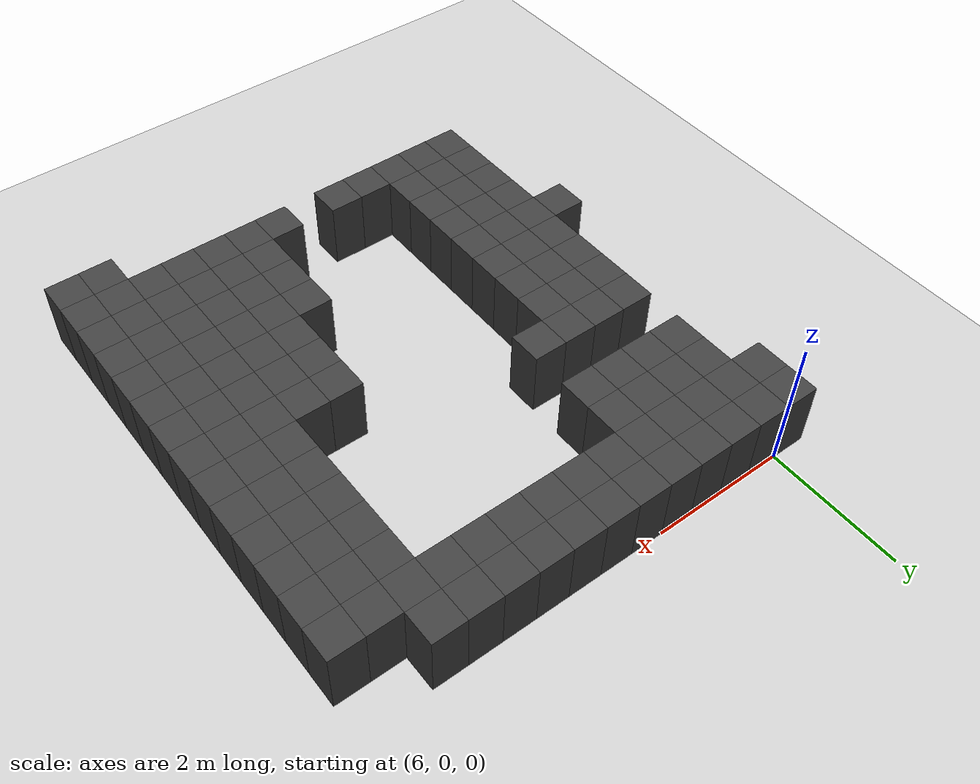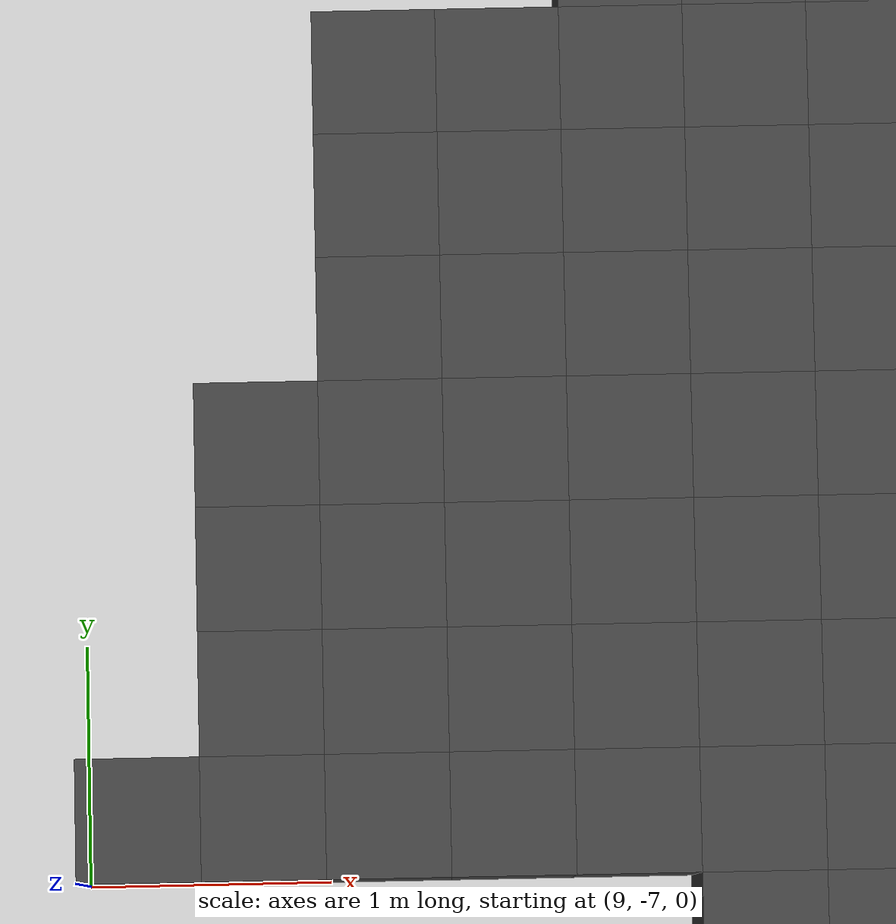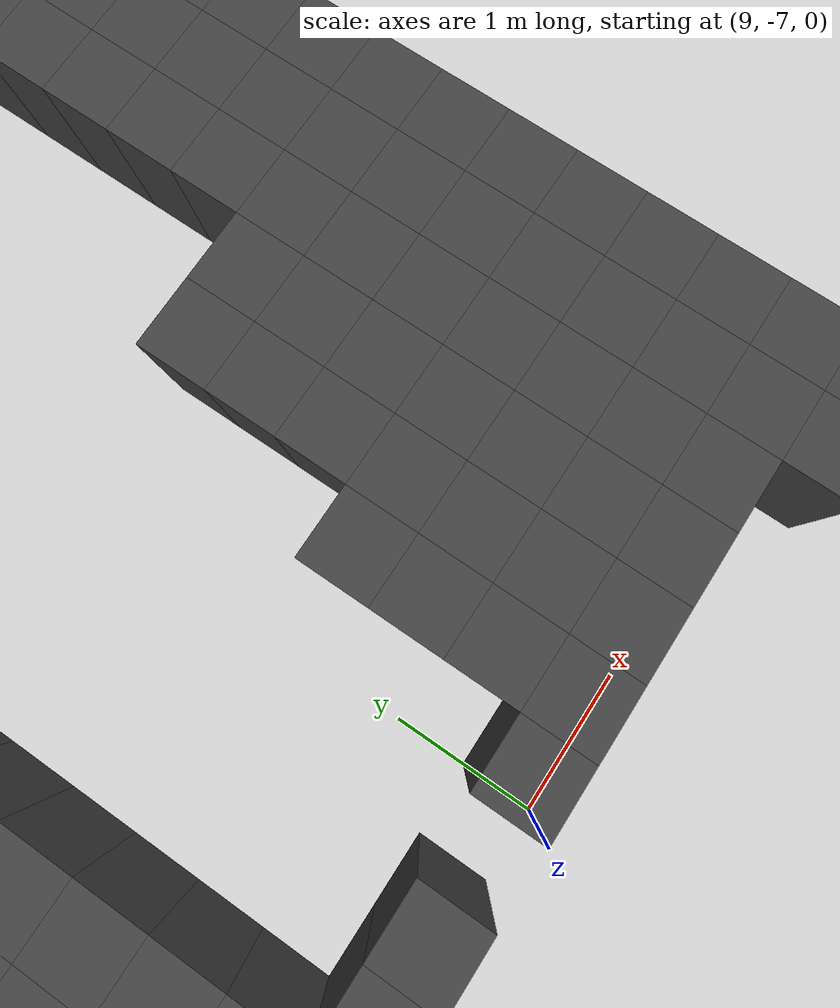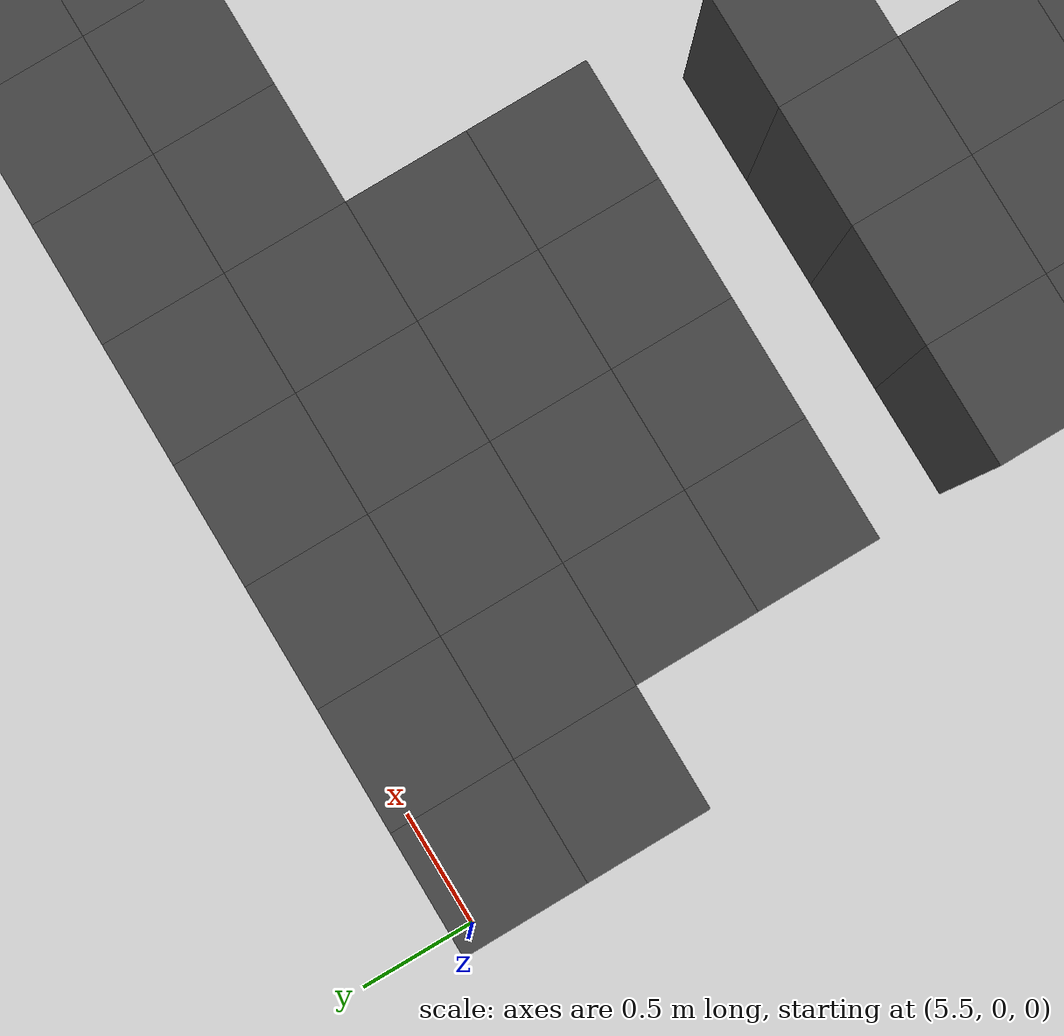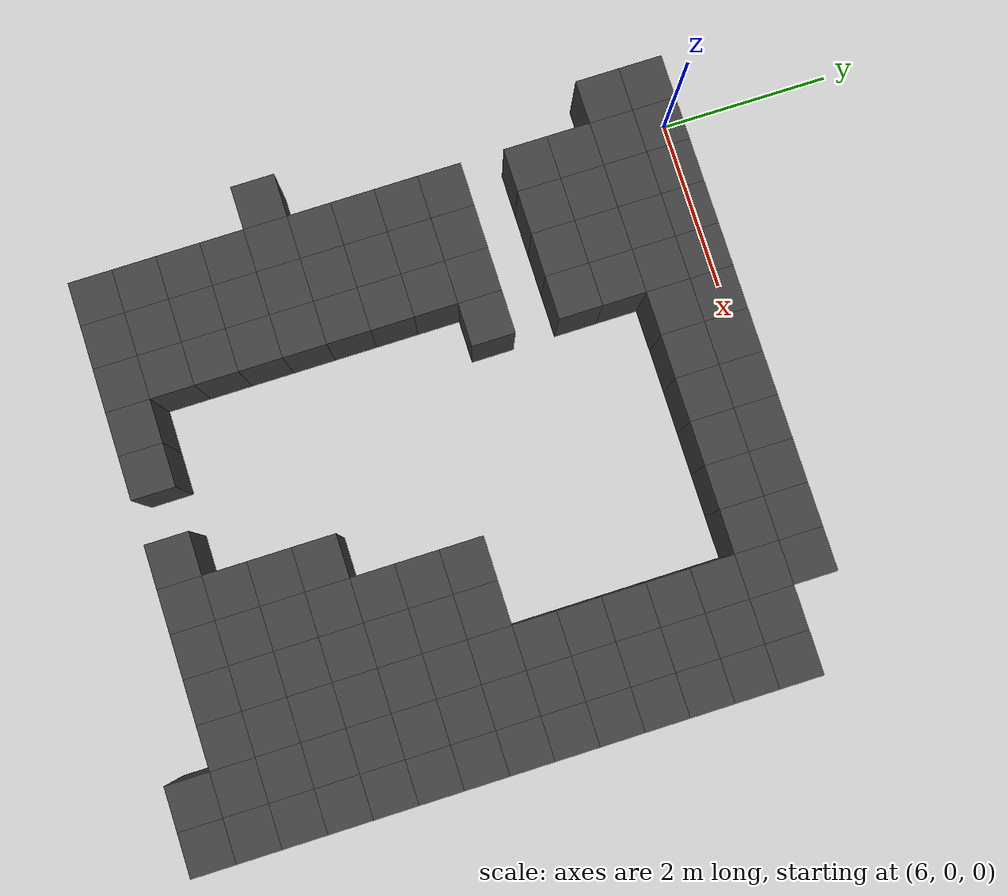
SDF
<sdf version="1.7">
 <world name="map_14547">
  <model name="ground_plane">
   <static>true</static>
   <link name="link">
    <collision name="collision">
     <geometry><plane><normal>0 0 1</normal><size>200 200</size></plane></geometry>
    </collision>
    <visual name="visual">
     <geometry><plane><normal>0 0 1</normal><size>200 200</size></plane></geometry>
     <material><ambient>0.8 0.8 0.8 1</ambient><diffuse>0.8 0.8 0.8 1</diffuse></material>
    </visual>
   </link>
  </model>
  <model name="maze_environment">
   <static>true</static>
   <link name="wall_911">
    <pose>5.750 -0.250 0.500 0 0 0</pose>
    <collision name="col"><geometry><box><size>0.5 0.5 1.0</size></box></geometry></collision>
    <visual name="vis">
     <geometry><box><size>0.5 0.5 1.0</size></box></geometry>
     <material><ambient>0.15 0.15 0.15 1</ambient><diffuse>0.25 0.25 0.25 1</diffuse></material>
    </visual>
   </link>
   <link name="wall_912">
    <pose>6.250 -0.250 0.500 0 0 0</pose>
    <collision name="col"><geometry><box><size>0.5 0.5 1.0</size></box></geometry></collision>
    <visual name="vis">
     <geometry><box><size>0.5 0.5 1.0</size></box></geometry>
     <material><ambient>0.15 0.15 0.15 1</ambient><diffuse>0.25 0.25 0.25 1</diffuse></material>
    </visual>
   </link>
   <link name="wall_913">
    <pose>6.750 -0.250 0.500 0 0 0</pose>
    <collision name="col"><geometry><box><size>0.5 0.5 1.0</size></box></geometry></collision>
    <visual name="vis">
     <geometry><box><size>0.5 0.5 1.0</size></box></geometry>
     <material><ambient>0.15 0.15 0.15 1</ambient><diffuse>0.25 0.25 0.25 1</diffuse></material>
    </visual>
   </link>
   <link name="wall_914">
    <pose>7.250 -0.250 0.500 0 0 0</pose>
    <collision name="col"><geometry><box><size>0.5 0.5 1.0</size></box></geometry></collision>
    <visual name="vis">
     <geometry><box><size>0.5 0.5 1.0</size></box></geometry>
     <material><ambient>0.15 0.15 0.15 1</ambient><diffuse>0.25 0.25 0.25 1</diffuse></material>
    </visual>
   </link>
   <link name="wall_915">
    <pose>7.750 -0.250 0.500 0 0 0</pose>
    <collision name="col"><geometry><box><size>0.5 0.5 1.0</size></box></geometry></collision>
    <visual name="vis">
     <geometry><box><size>0.5 0.5 1.0</size></box></geometry>
     <material><ambient>0.15 0.15 0.15 1</ambient><diffuse>0.25 0.25 0.25 1</diffuse></material>
    </visual>
   </link>
   <link name="wall_916">
    <pose>8.250 -0.250 0.500 0 0 0</pose>
    <collision name="col"><geometry><box><size>0.5 0.5 1.0</size></box></geometry></collision>
    <visual name="vis">
     <geometry><box><size>0.5 0.5 1.0</size></box></geometry>
     <material><ambient>0.15 0.15 0.15 1</ambient><diffuse>0.25 0.25 0.25 1</diffuse></material>
    </visual>
   </link>
   <link name="wall_917">
    <pose>8.750 -0.250 0.500 0 0 0</pose>
    <collision name="col"><geometry><box><size>0.5 0.5 1.0</size></box></geometry></collision>
    <visual name="vis">
     <geometry><box><size>0.5 0.5 1.0</size></box></geometry>
     <material><ambient>0.15 0.15 0.15 1</ambient><diffuse>0.25 0.25 0.25 1</diffuse></material>
    </visual>
   </link>
   <link name="wall_918">
    <pose>9.250 -0.250 0.500 0 0 0</pose>
    <collision name="col"><geometry><box><size>0.5 0.5 1.0</size></box></geometry></collision>
    <visual name="vis">
     <geometry><box><size>0.5 0.5 1.0</size></box></geometry>
     <material><ambient>0.15 0.15 0.15 1</ambient><diffuse>0.25 0.25 0.25 1</diffuse></material>
    </visual>
   </link>
   <link name="wall_919">
    <pose>9.750 -0.250 0.500 0 0 0</pose>
    <collision name="col"><geometry><box><size>0.5 0.5 1.0</size></box></geometry></collision>
    <visual name="vis">
     <geometry><box><size>0.5 0.5 1.0</size></box></geometry>
     <material><ambient>0.15 0.15 0.15 1</ambient><diffuse>0.25 0.25 0.25 1</diffuse></material>
    </visual>
   </link>
   <link name="wall_920">
    <pose>10.250 -0.250 0.500 0 0 0</pose>
    <collision name="col"><geometry><box><size>0.5 0.5 1.0</size></box></geometry></collision>
    <visual name="vis">
     <geometry><box><size>0.5 0.5 1.0</size></box></geometry>
     <material><ambient>0.15 0.15 0.15 1</ambient><diffuse>0.25 0.25 0.25 1</diffuse></material>
    </visual>
   </link>
   <link name="wall_921">
    <pose>10.750 -0.250 0.500 0 0 0</pose>
    <collision name="col"><geometry><box><size>0.5 0.5 1.0</size></box></geometry></collision>
    <visual name="vis">
     <geometry><box><size>0.5 0.5 1.0</size></box></geometry>
     <material><ambient>0.15 0.15 0.15 1</ambient><diffuse>0.25 0.25 0.25 1</diffuse></material>
    </visual>
   </link>
   <link name="wall_922">
    <pose>11.250 -0.250 0.500 0 0 0</pose>
    <collision name="col"><geometry><box><size>0.5 0.5 1.0</size></box></geometry></collision>
    <visual name="vis">
     <geometry><box><size>0.5 0.5 1.0</size></box></geometry>
     <material><ambient>0.15 0.15 0.15 1</ambient><diffuse>0.25 0.25 0.25 1</diffuse></material>
    </visual>
   </link>
   <link name="wall_950">
    <pose>5.750 -0.750 0.500 0 0 0</pose>
    <collision name="col"><geometry><box><size>0.5 0.5 1.0</size></box></geometry></collision>
    <visual name="vis">
     <geometry><box><size>0.5 0.5 1.0</size></box></geometry>
     <material><ambient>0.15 0.15 0.15 1</ambient><diffuse>0.25 0.25 0.25 1</diffuse></material>
    </visual>
   </link>
   <link name="wall_951">
    <pose>6.250 -0.750 0.500 0 0 0</pose>
    <collision name="col"><geometry><box><size>0.5 0.5 1.0</size></box></geometry></collision>
    <visual name="vis">
     <geometry><box><size>0.5 0.5 1.0</size></box></geometry>
     <material><ambient>0.15 0.15 0.15 1</ambient><diffuse>0.25 0.25 0.25 1</diffuse></material>
    </visual>
   </link>
   <link name="wall_952">
    <pose>6.750 -0.750 0.500 0 0 0</pose>
    <collision name="col"><geometry><box><size>0.5 0.5 1.0</size></box></geometry></collision>
    <visual name="vis">
     <geometry><box><size>0.5 0.5 1.0</size></box></geometry>
     <material><ambient>0.15 0.15 0.15 1</ambient><diffuse>0.25 0.25 0.25 1</diffuse></material>
    </visual>
   </link>
   <link name="wall_953">
    <pose>7.250 -0.750 0.500 0 0 0</pose>
    <collision name="col"><geometry><box><size>0.5 0.5 1.0</size></box></geometry></collision>
    <visual name="vis">
     <geometry><box><size>0.5 0.5 1.0</size></box></geometry>
     <material><ambient>0.15 0.15 0.15 1</ambient><diffuse>0.25 0.25 0.25 1</diffuse></material>
    </visual>
   </link>
   <link name="wall_954">
    <pose>7.750 -0.750 0.500 0 0 0</pose>
    <collision name="col"><geometry><box><size>0.5 0.5 1.0</size></box></geometry></collision>
    <visual name="vis">
     <geometry><box><size>0.5 0.5 1.0</size></box></geometry>
     <material><ambient>0.15 0.15 0.15 1</ambient><diffuse>0.25 0.25 0.25 1</diffuse></material>
    </visual>
   </link>
   <link name="wall_955">
    <pose>8.250 -0.750 0.500 0 0 0</pose>
    <collision name="col"><geometry><box><size>0.5 0.5 1.0</size></box></geometry></collision>
    <visual name="vis">
     <geometry><box><size>0.5 0.5 1.0</size></box></geometry>
     <material><ambient>0.15 0.15 0.15 1</ambient><diffuse>0.25 0.25 0.25 1</diffuse></material>
    </visual>
   </link>
   <link name="wall_956">
    <pose>8.750 -0.750 0.500 0 0 0</pose>
    <collision name="col"><geometry><box><size>0.5 0.5 1.0</size></box></geometry></collision>
    <visual name="vis">
     <geometry><box><size>0.5 0.5 1.0</size></box></geometry>
     <material><ambient>0.15 0.15 0.15 1</ambient><diffuse>0.25 0.25 0.25 1</diffuse></material>
    </visual>
   </link>
   <link name="wall_957">
    <pose>9.250 -0.750 0.500 0 0 0</pose>
    <collision name="col"><geometry><box><size>0.5 0.5 1.0</size></box></geometry></collision>
    <visual name="vis">
     <geometry><box><size>0.5 0.5 1.0</size></box></geometry>
     <material><ambient>0.15 0.15 0.15 1</ambient><diffuse>0.25 0.25 0.25 1</diffuse></material>
    </visual>
   </link>
   <link name="wall_958">
    <pose>9.750 -0.750 0.500 0 0 0</pose>
    <collision name="col"><geometry><box><size>0.5 0.5 1.0</size></box></geometry></collision>
    <visual name="vis">
     <geometry><box><size>0.5 0.5 1.0</size></box></geometry>
     <material><ambient>0.15 0.15 0.15 1</ambient><diffuse>0.25 0.25 0.25 1</diffuse></material>
    </visual>
   </link>
   <link name="wall_959">
    <pose>10.250 -0.750 0.500 0 0 0</pose>
    <collision name="col"><geometry><box><size>0.5 0.5 1.0</size></box></geometry></collision>
    <visual name="vis">
     <geometry><box><size>0.5 0.5 1.0</size></box></geometry>
     <material><ambient>0.15 0.15 0.15 1</ambient><diffuse>0.25 0.25 0.25 1</diffuse></material>
    </visual>
   </link>
   <link name="wall_960">
    <pose>10.750 -0.750 0.500 0 0 0</pose>
    <collision name="col"><geometry><box><size>0.5 0.5 1.0</size></box></geometry></collision>
    <visual name="vis">
     <geometry><box><size>0.5 0.5 1.0</size></box></geometry>
     <material><ambient>0.15 0.15 0.15 1</ambient><diffuse>0.25 0.25 0.25 1</diffuse></material>
    </visual>
   </link>
   <link name="wall_961">
    <pose>11.250 -0.750 0.500 0 0 0</pose>
    <collision name="col"><geometry><box><size>0.5 0.5 1.0</size></box></geometry></collision>
    <visual name="vis">
     <geometry><box><size>0.5 0.5 1.0</size></box></geometry>
     <material><ambient>0.15 0.15 0.15 1</ambient><diffuse>0.25 0.25 0.25 1</diffuse></material>
    </visual>
   </link>
   <link name="wall_962">
    <pose>11.750 -0.750 0.500 0 0 0</pose>
    <collision name="col"><geometry><box><size>0.5 0.5 1.0</size></box></geometry></collision>
    <visual name="vis">
     <geometry><box><size>0.5 0.5 1.0</size></box></geometry>
     <material><ambient>0.15 0.15 0.15 1</ambient><diffuse>0.25 0.25 0.25 1</diffuse></material>
    </visual>
   </link>
   <link name="wall_963">
    <pose>12.250 -0.750 0.500 0 0 0</pose>
    <collision name="col"><geometry><box><size>0.5 0.5 1.0</size></box></geometry></collision>
    <visual name="vis">
     <geometry><box><size>0.5 0.5 1.0</size></box></geometry>
     <material><ambient>0.15 0.15 0.15 1</ambient><diffuse>0.25 0.25 0.25 1</diffuse></material>
    </visual>
   </link>
   <link name="wall_986">
    <pose>6.250 -1.250 0.500 0 0 0</pose>
    <collision name="col"><geometry><box><size>0.5 0.5 1.0</size></box></geometry></collision>
    <visual name="vis">
     <geometry><box><size>0.5 0.5 1.0</size></box></geometry>
     <material><ambient>0.15 0.15 0.15 1</ambient><diffuse>0.25 0.25 0.25 1</diffuse></material>
    </visual>
   </link>
   <link name="wall_987">
    <pose>6.750 -1.250 0.500 0 0 0</pose>
    <collision name="col"><geometry><box><size>0.5 0.5 1.0</size></box></geometry></collision>
    <visual name="vis">
     <geometry><box><size>0.5 0.5 1.0</size></box></geometry>
     <material><ambient>0.15 0.15 0.15 1</ambient><diffuse>0.25 0.25 0.25 1</diffuse></material>
    </visual>
   </link>
   <link name="wall_988">
    <pose>7.250 -1.250 0.500 0 0 0</pose>
    <collision name="col"><geometry><box><size>0.5 0.5 1.0</size></box></geometry></collision>
    <visual name="vis">
     <geometry><box><size>0.5 0.5 1.0</size></box></geometry>
     <material><ambient>0.15 0.15 0.15 1</ambient><diffuse>0.25 0.25 0.25 1</diffuse></material>
    </visual>
   </link>
   <link name="wall_989">
    <pose>7.750 -1.250 0.500 0 0 0</pose>
    <collision name="col"><geometry><box><size>0.5 0.5 1.0</size></box></geometry></collision>
    <visual name="vis">
     <geometry><box><size>0.5 0.5 1.0</size></box></geometry>
     <material><ambient>0.15 0.15 0.15 1</ambient><diffuse>0.25 0.25 0.25 1</diffuse></material>
    </visual>
   </link>
   <link name="wall_990">
    <pose>11.250 -1.250 0.500 0 0 0</pose>
    <collision name="col"><geometry><box><size>0.5 0.5 1.0</size></box></geometry></collision>
    <visual name="vis">
     <geometry><box><size>0.5 0.5 1.0</size></box></geometry>
     <material><ambient>0.15 0.15 0.15 1</ambient><diffuse>0.25 0.25 0.25 1</diffuse></material>
    </visual>
   </link>
   <link name="wall_991">
    <pose>11.750 -1.250 0.500 0 0 0</pose>
    <collision name="col"><geometry><box><size>0.5 0.5 1.0</size></box></geometry></collision>
    <visual name="vis">
     <geometry><box><size>0.5 0.5 1.0</size></box></geometry>
     <material><ambient>0.15 0.15 0.15 1</ambient><diffuse>0.25 0.25 0.25 1</diffuse></material>
    </visual>
   </link>
   <link name="wall_992">
    <pose>12.250 -1.250 0.500 0 0 0</pose>
    <collision name="col"><geometry><box><size>0.5 0.5 1.0</size></box></geometry></collision>
    <visual name="vis">
     <geometry><box><size>0.5 0.5 1.0</size></box></geometry>
     <material><ambient>0.15 0.15 0.15 1</ambient><diffuse>0.25 0.25 0.25 1</diffuse></material>
    </visual>
   </link>
   <link name="wall_1020">
    <pose>6.250 -1.750 0.500 0 0 0</pose>
    <collision name="col"><geometry><box><size>0.5 0.5 1.0</size></box></geometry></collision>
    <visual name="vis">
     <geometry><box><size>0.5 0.5 1.0</size></box></geometry>
     <material><ambient>0.15 0.15 0.15 1</ambient><diffuse>0.25 0.25 0.25 1</diffuse></material>
    </visual>
   </link>
   <link name="wall_1021">
    <pose>6.750 -1.750 0.500 0 0 0</pose>
    <collision name="col"><geometry><box><size>0.5 0.5 1.0</size></box></geometry></collision>
    <visual name="vis">
     <geometry><box><size>0.5 0.5 1.0</size></box></geometry>
     <material><ambient>0.15 0.15 0.15 1</ambient><diffuse>0.25 0.25 0.25 1</diffuse></material>
    </visual>
   </link>
   <link name="wall_1022">
    <pose>7.250 -1.750 0.500 0 0 0</pose>
    <collision name="col"><geometry><box><size>0.5 0.5 1.0</size></box></geometry></collision>
    <visual name="vis">
     <geometry><box><size>0.5 0.5 1.0</size></box></geometry>
     <material><ambient>0.15 0.15 0.15 1</ambient><diffuse>0.25 0.25 0.25 1</diffuse></material>
    </visual>
   </link>
   <link name="wall_1023">
    <pose>7.750 -1.750 0.500 0 0 0</pose>
    <collision name="col"><geometry><box><size>0.5 0.5 1.0</size></box></geometry></collision>
    <visual name="vis">
     <geometry><box><size>0.5 0.5 1.0</size></box></geometry>
     <material><ambient>0.15 0.15 0.15 1</ambient><diffuse>0.25 0.25 0.25 1</diffuse></material>
    </visual>
   </link>
   <link name="wall_1024">
    <pose>11.250 -1.750 0.500 0 0 0</pose>
    <collision name="col"><geometry><box><size>0.5 0.5 1.0</size></box></geometry></collision>
    <visual name="vis">
     <geometry><box><size>0.5 0.5 1.0</size></box></geometry>
     <material><ambient>0.15 0.15 0.15 1</ambient><diffuse>0.25 0.25 0.25 1</diffuse></material>
    </visual>
   </link>
   <link name="wall_1025">
    <pose>11.750 -1.750 0.500 0 0 0</pose>
    <collision name="col"><geometry><box><size>0.5 0.5 1.0</size></box></geometry></collision>
    <visual name="vis">
     <geometry><box><size>0.5 0.5 1.0</size></box></geometry>
     <material><ambient>0.15 0.15 0.15 1</ambient><diffuse>0.25 0.25 0.25 1</diffuse></material>
    </visual>
   </link>
   <link name="wall_1026">
    <pose>12.250 -1.750 0.500 0 0 0</pose>
    <collision name="col"><geometry><box><size>0.5 0.5 1.0</size></box></geometry></collision>
    <visual name="vis">
     <geometry><box><size>0.5 0.5 1.0</size></box></geometry>
     <material><ambient>0.15 0.15 0.15 1</ambient><diffuse>0.25 0.25 0.25 1</diffuse></material>
    </visual>
   </link>
   <link name="wall_1054">
    <pose>11.250 -2.250 0.500 0 0 0</pose>
    <collision name="col"><geometry><box><size>0.5 0.5 1.0</size></box></geometry></collision>
    <visual name="vis">
     <geometry><box><size>0.5 0.5 1.0</size></box></geometry>
     <material><ambient>0.15 0.15 0.15 1</ambient><diffuse>0.25 0.25 0.25 1</diffuse></material>
    </visual>
   </link>
   <link name="wall_1055">
    <pose>11.750 -2.250 0.500 0 0 0</pose>
    <collision name="col"><geometry><box><size>0.5 0.5 1.0</size></box></geometry></collision>
    <visual name="vis">
     <geometry><box><size>0.5 0.5 1.0</size></box></geometry>
     <material><ambient>0.15 0.15 0.15 1</ambient><diffuse>0.25 0.25 0.25 1</diffuse></material>
    </visual>
   </link>
   <link name="wall_1056">
    <pose>12.250 -2.250 0.500 0 0 0</pose>
    <collision name="col"><geometry><box><size>0.5 0.5 1.0</size></box></geometry></collision>
    <visual name="vis">
     <geometry><box><size>0.5 0.5 1.0</size></box></geometry>
     <material><ambient>0.15 0.15 0.15 1</ambient><diffuse>0.25 0.25 0.25 1</diffuse></material>
    </visual>
   </link>
   <link name="wall_1083">
    <pose>6.250 -2.750 0.500 0 0 0</pose>
    <collision name="col"><geometry><box><size>0.5 0.5 1.0</size></box></geometry></collision>
    <visual name="vis">
     <geometry><box><size>0.5 0.5 1.0</size></box></geometry>
     <material><ambient>0.15 0.15 0.15 1</ambient><diffuse>0.25 0.25 0.25 1</diffuse></material>
    </visual>
   </link>
   <link name="wall_1084">
    <pose>6.750 -2.750 0.500 0 0 0</pose>
    <collision name="col"><geometry><box><size>0.5 0.5 1.0</size></box></geometry></collision>
    <visual name="vis">
     <geometry><box><size>0.5 0.5 1.0</size></box></geometry>
     <material><ambient>0.15 0.15 0.15 1</ambient><diffuse>0.25 0.25 0.25 1</diffuse></material>
    </visual>
   </link>
   <link name="wall_1085">
    <pose>7.250 -2.750 0.500 0 0 0</pose>
    <collision name="col"><geometry><box><size>0.5 0.5 1.0</size></box></geometry></collision>
    <visual name="vis">
     <geometry><box><size>0.5 0.5 1.0</size></box></geometry>
     <material><ambient>0.15 0.15 0.15 1</ambient><diffuse>0.25 0.25 0.25 1</diffuse></material>
    </visual>
   </link>
   <link name="wall_1086">
    <pose>7.750 -2.750 0.500 0 0 0</pose>
    <collision name="col"><geometry><box><size>0.5 0.5 1.0</size></box></geometry></collision>
    <visual name="vis">
     <geometry><box><size>0.5 0.5 1.0</size></box></geometry>
     <material><ambient>0.15 0.15 0.15 1</ambient><diffuse>0.25 0.25 0.25 1</diffuse></material>
    </visual>
   </link>
   <link name="wall_1087">
    <pose>11.250 -2.750 0.500 0 0 0</pose>
    <collision name="col"><geometry><box><size>0.5 0.5 1.0</size></box></geometry></collision>
    <visual name="vis">
     <geometry><box><size>0.5 0.5 1.0</size></box></geometry>
     <material><ambient>0.15 0.15 0.15 1</ambient><diffuse>0.25 0.25 0.25 1</diffuse></material>
    </visual>
   </link>
   <link name="wall_1088">
    <pose>11.750 -2.750 0.500 0 0 0</pose>
    <collision name="col"><geometry><box><size>0.5 0.5 1.0</size></box></geometry></collision>
    <visual name="vis">
     <geometry><box><size>0.5 0.5 1.0</size></box></geometry>
     <material><ambient>0.15 0.15 0.15 1</ambient><diffuse>0.25 0.25 0.25 1</diffuse></material>
    </visual>
   </link>
   <link name="wall_1089">
    <pose>12.250 -2.750 0.500 0 0 0</pose>
    <collision name="col"><geometry><box><size>0.5 0.5 1.0</size></box></geometry></collision>
    <visual name="vis">
     <geometry><box><size>0.5 0.5 1.0</size></box></geometry>
     <material><ambient>0.15 0.15 0.15 1</ambient><diffuse>0.25 0.25 0.25 1</diffuse></material>
    </visual>
   </link>
   <link name="wall_1118">
    <pose>6.250 -3.250 0.500 0 0 0</pose>
    <collision name="col"><geometry><box><size>0.5 0.5 1.0</size></box></geometry></collision>
    <visual name="vis">
     <geometry><box><size>0.5 0.5 1.0</size></box></geometry>
     <material><ambient>0.15 0.15 0.15 1</ambient><diffuse>0.25 0.25 0.25 1</diffuse></material>
    </visual>
   </link>
   <link name="wall_1119">
    <pose>6.750 -3.250 0.500 0 0 0</pose>
    <collision name="col"><geometry><box><size>0.5 0.5 1.0</size></box></geometry></collision>
    <visual name="vis">
     <geometry><box><size>0.5 0.5 1.0</size></box></geometry>
     <material><ambient>0.15 0.15 0.15 1</ambient><diffuse>0.25 0.25 0.25 1</diffuse></material>
    </visual>
   </link>
   <link name="wall_1120">
    <pose>7.250 -3.250 0.500 0 0 0</pose>
    <collision name="col"><geometry><box><size>0.5 0.5 1.0</size></box></geometry></collision>
    <visual name="vis">
     <geometry><box><size>0.5 0.5 1.0</size></box></geometry>
     <material><ambient>0.15 0.15 0.15 1</ambient><diffuse>0.25 0.25 0.25 1</diffuse></material>
    </visual>
   </link>
   <link name="wall_1121">
    <pose>11.250 -3.250 0.500 0 0 0</pose>
    <collision name="col"><geometry><box><size>0.5 0.5 1.0</size></box></geometry></collision>
    <visual name="vis">
     <geometry><box><size>0.5 0.5 1.0</size></box></geometry>
     <material><ambient>0.15 0.15 0.15 1</ambient><diffuse>0.25 0.25 0.25 1</diffuse></material>
    </visual>
   </link>
   <link name="wall_1122">
    <pose>11.750 -3.250 0.500 0 0 0</pose>
    <collision name="col"><geometry><box><size>0.5 0.5 1.0</size></box></geometry></collision>
    <visual name="vis">
     <geometry><box><size>0.5 0.5 1.0</size></box></geometry>
     <material><ambient>0.15 0.15 0.15 1</ambient><diffuse>0.25 0.25 0.25 1</diffuse></material>
    </visual>
   </link>
   <link name="wall_1123">
    <pose>12.250 -3.250 0.500 0 0 0</pose>
    <collision name="col"><geometry><box><size>0.5 0.5 1.0</size></box></geometry></collision>
    <visual name="vis">
     <geometry><box><size>0.5 0.5 1.0</size></box></geometry>
     <material><ambient>0.15 0.15 0.15 1</ambient><diffuse>0.25 0.25 0.25 1</diffuse></material>
    </visual>
   </link>
   <link name="wall_1152">
    <pose>6.250 -3.750 0.500 0 0 0</pose>
    <collision name="col"><geometry><box><size>0.5 0.5 1.0</size></box></geometry></collision>
    <visual name="vis">
     <geometry><box><size>0.5 0.5 1.0</size></box></geometry>
     <material><ambient>0.15 0.15 0.15 1</ambient><diffuse>0.25 0.25 0.25 1</diffuse></material>
    </visual>
   </link>
   <link name="wall_1153">
    <pose>6.750 -3.750 0.500 0 0 0</pose>
    <collision name="col"><geometry><box><size>0.5 0.5 1.0</size></box></geometry></collision>
    <visual name="vis">
     <geometry><box><size>0.5 0.5 1.0</size></box></geometry>
     <material><ambient>0.15 0.15 0.15 1</ambient><diffuse>0.25 0.25 0.25 1</diffuse></material>
    </visual>
   </link>
   <link name="wall_1154">
    <pose>7.250 -3.750 0.500 0 0 0</pose>
    <collision name="col"><geometry><box><size>0.5 0.5 1.0</size></box></geometry></collision>
    <visual name="vis">
     <geometry><box><size>0.5 0.5 1.0</size></box></geometry>
     <material><ambient>0.15 0.15 0.15 1</ambient><diffuse>0.25 0.25 0.25 1</diffuse></material>
    </visual>
   </link>
   <link name="wall_1155">
    <pose>10.250 -3.750 0.500 0 0 0</pose>
    <collision name="col"><geometry><box><size>0.5 0.5 1.0</size></box></geometry></collision>
    <visual name="vis">
     <geometry><box><size>0.5 0.5 1.0</size></box></geometry>
     <material><ambient>0.15 0.15 0.15 1</ambient><diffuse>0.25 0.25 0.25 1</diffuse></material>
    </visual>
   </link>
   <link name="wall_1156">
    <pose>10.750 -3.750 0.500 0 0 0</pose>
    <collision name="col"><geometry><box><size>0.5 0.5 1.0</size></box></geometry></collision>
    <visual name="vis">
     <geometry><box><size>0.5 0.5 1.0</size></box></geometry>
     <material><ambient>0.15 0.15 0.15 1</ambient><diffuse>0.25 0.25 0.25 1</diffuse></material>
    </visual>
   </link>
   <link name="wall_1157">
    <pose>11.250 -3.750 0.500 0 0 0</pose>
    <collision name="col"><geometry><box><size>0.5 0.5 1.0</size></box></geometry></collision>
    <visual name="vis">
     <geometry><box><size>0.5 0.5 1.0</size></box></geometry>
     <material><ambient>0.15 0.15 0.15 1</ambient><diffuse>0.25 0.25 0.25 1</diffuse></material>
    </visual>
   </link>
   <link name="wall_1158">
    <pose>11.750 -3.750 0.500 0 0 0</pose>
    <collision name="col"><geometry><box><size>0.5 0.5 1.0</size></box></geometry></collision>
    <visual name="vis">
     <geometry><box><size>0.5 0.5 1.0</size></box></geometry>
     <material><ambient>0.15 0.15 0.15 1</ambient><diffuse>0.25 0.25 0.25 1</diffuse></material>
    </visual>
   </link>
   <link name="wall_1159">
    <pose>12.250 -3.750 0.500 0 0 0</pose>
    <collision name="col"><geometry><box><size>0.5 0.5 1.0</size></box></geometry></collision>
    <visual name="vis">
     <geometry><box><size>0.5 0.5 1.0</size></box></geometry>
     <material><ambient>0.15 0.15 0.15 1</ambient><diffuse>0.25 0.25 0.25 1</diffuse></material>
    </visual>
   </link>
   <link name="wall_1189">
    <pose>6.250 -4.250 0.500 0 0 0</pose>
    <collision name="col"><geometry><box><size>0.5 0.5 1.0</size></box></geometry></collision>
    <visual name="vis">
     <geometry><box><size>0.5 0.5 1.0</size></box></geometry>
     <material><ambient>0.15 0.15 0.15 1</ambient><diffuse>0.25 0.25 0.25 1</diffuse></material>
    </visual>
   </link>
   <link name="wall_1190">
    <pose>6.750 -4.250 0.500 0 0 0</pose>
    <collision name="col"><geometry><box><size>0.5 0.5 1.0</size></box></geometry></collision>
    <visual name="vis">
     <geometry><box><size>0.5 0.5 1.0</size></box></geometry>
     <material><ambient>0.15 0.15 0.15 1</ambient><diffuse>0.25 0.25 0.25 1</diffuse></material>
    </visual>
   </link>
   <link name="wall_1191">
    <pose>7.250 -4.250 0.500 0 0 0</pose>
    <collision name="col"><geometry><box><size>0.5 0.5 1.0</size></box></geometry></collision>
    <visual name="vis">
     <geometry><box><size>0.5 0.5 1.0</size></box></geometry>
     <material><ambient>0.15 0.15 0.15 1</ambient><diffuse>0.25 0.25 0.25 1</diffuse></material>
    </visual>
   </link>
   <link name="wall_1192">
    <pose>10.250 -4.250 0.500 0 0 0</pose>
    <collision name="col"><geometry><box><size>0.5 0.5 1.0</size></box></geometry></collision>
    <visual name="vis">
     <geometry><box><size>0.5 0.5 1.0</size></box></geometry>
     <material><ambient>0.15 0.15 0.15 1</ambient><diffuse>0.25 0.25 0.25 1</diffuse></material>
    </visual>
   </link>
   <link name="wall_1193">
    <pose>10.750 -4.250 0.500 0 0 0</pose>
    <collision name="col"><geometry><box><size>0.5 0.5 1.0</size></box></geometry></collision>
    <visual name="vis">
     <geometry><box><size>0.5 0.5 1.0</size></box></geometry>
     <material><ambient>0.15 0.15 0.15 1</ambient><diffuse>0.25 0.25 0.25 1</diffuse></material>
    </visual>
   </link>
   <link name="wall_1194">
    <pose>11.250 -4.250 0.500 0 0 0</pose>
    <collision name="col"><geometry><box><size>0.5 0.5 1.0</size></box></geometry></collision>
    <visual name="vis">
     <geometry><box><size>0.5 0.5 1.0</size></box></geometry>
     <material><ambient>0.15 0.15 0.15 1</ambient><diffuse>0.25 0.25 0.25 1</diffuse></material>
    </visual>
   </link>
   <link name="wall_1195">
    <pose>11.750 -4.250 0.500 0 0 0</pose>
    <collision name="col"><geometry><box><size>0.5 0.5 1.0</size></box></geometry></collision>
    <visual name="vis">
     <geometry><box><size>0.5 0.5 1.0</size></box></geometry>
     <material><ambient>0.15 0.15 0.15 1</ambient><diffuse>0.25 0.25 0.25 1</diffuse></material>
    </visual>
   </link>
   <link name="wall_1196">
    <pose>12.250 -4.250 0.500 0 0 0</pose>
    <collision name="col"><geometry><box><size>0.5 0.5 1.0</size></box></geometry></collision>
    <visual name="vis">
     <geometry><box><size>0.5 0.5 1.0</size></box></geometry>
     <material><ambient>0.15 0.15 0.15 1</ambient><diffuse>0.25 0.25 0.25 1</diffuse></material>
    </visual>
   </link>
   <link name="wall_1231">
    <pose>5.750 -4.750 0.500 0 0 0</pose>
    <collision name="col"><geometry><box><size>0.5 0.5 1.0</size></box></geometry></collision>
    <visual name="vis">
     <geometry><box><size>0.5 0.5 1.0</size></box></geometry>
     <material><ambient>0.15 0.15 0.15 1</ambient><diffuse>0.25 0.25 0.25 1</diffuse></material>
    </visual>
   </link>
   <link name="wall_1232">
    <pose>6.250 -4.750 0.500 0 0 0</pose>
    <collision name="col"><geometry><box><size>0.5 0.5 1.0</size></box></geometry></collision>
    <visual name="vis">
     <geometry><box><size>0.5 0.5 1.0</size></box></geometry>
     <material><ambient>0.15 0.15 0.15 1</ambient><diffuse>0.25 0.25 0.25 1</diffuse></material>
    </visual>
   </link>
   <link name="wall_1233">
    <pose>6.750 -4.750 0.500 0 0 0</pose>
    <collision name="col"><geometry><box><size>0.5 0.5 1.0</size></box></geometry></collision>
    <visual name="vis">
     <geometry><box><size>0.5 0.5 1.0</size></box></geometry>
     <material><ambient>0.15 0.15 0.15 1</ambient><diffuse>0.25 0.25 0.25 1</diffuse></material>
    </visual>
   </link>
   <link name="wall_1234">
    <pose>7.250 -4.750 0.500 0 0 0</pose>
    <collision name="col"><geometry><box><size>0.5 0.5 1.0</size></box></geometry></collision>
    <visual name="vis">
     <geometry><box><size>0.5 0.5 1.0</size></box></geometry>
     <material><ambient>0.15 0.15 0.15 1</ambient><diffuse>0.25 0.25 0.25 1</diffuse></material>
    </visual>
   </link>
   <link name="wall_1235">
    <pose>10.250 -4.750 0.500 0 0 0</pose>
    <collision name="col"><geometry><box><size>0.5 0.5 1.0</size></box></geometry></collision>
    <visual name="vis">
     <geometry><box><size>0.5 0.5 1.0</size></box></geometry>
     <material><ambient>0.15 0.15 0.15 1</ambient><diffuse>0.25 0.25 0.25 1</diffuse></material>
    </visual>
   </link>
   <link name="wall_1236">
    <pose>10.750 -4.750 0.500 0 0 0</pose>
    <collision name="col"><geometry><box><size>0.5 0.5 1.0</size></box></geometry></collision>
    <visual name="vis">
     <geometry><box><size>0.5 0.5 1.0</size></box></geometry>
     <material><ambient>0.15 0.15 0.15 1</ambient><diffuse>0.25 0.25 0.25 1</diffuse></material>
    </visual>
   </link>
   <link name="wall_1237">
    <pose>11.250 -4.750 0.500 0 0 0</pose>
    <collision name="col"><geometry><box><size>0.5 0.5 1.0</size></box></geometry></collision>
    <visual name="vis">
     <geometry><box><size>0.5 0.5 1.0</size></box></geometry>
     <material><ambient>0.15 0.15 0.15 1</ambient><diffuse>0.25 0.25 0.25 1</diffuse></material>
    </visual>
   </link>
   <link name="wall_1238">
    <pose>11.750 -4.750 0.500 0 0 0</pose>
    <collision name="col"><geometry><box><size>0.5 0.5 1.0</size></box></geometry></collision>
    <visual name="vis">
     <geometry><box><size>0.5 0.5 1.0</size></box></geometry>
     <material><ambient>0.15 0.15 0.15 1</ambient><diffuse>0.25 0.25 0.25 1</diffuse></material>
    </visual>
   </link>
   <link name="wall_1239">
    <pose>12.250 -4.750 0.500 0 0 0</pose>
    <collision name="col"><geometry><box><size>0.5 0.5 1.0</size></box></geometry></collision>
    <visual name="vis">
     <geometry><box><size>0.5 0.5 1.0</size></box></geometry>
     <material><ambient>0.15 0.15 0.15 1</ambient><diffuse>0.25 0.25 0.25 1</diffuse></material>
    </visual>
   </link>
   <link name="wall_1271">
    <pose>6.250 -5.250 0.500 0 0 0</pose>
    <collision name="col"><geometry><box><size>0.5 0.5 1.0</size></box></geometry></collision>
    <visual name="vis">
     <geometry><box><size>0.5 0.5 1.0</size></box></geometry>
     <material><ambient>0.15 0.15 0.15 1</ambient><diffuse>0.25 0.25 0.25 1</diffuse></material>
    </visual>
   </link>
   <link name="wall_1272">
    <pose>6.750 -5.250 0.500 0 0 0</pose>
    <collision name="col"><geometry><box><size>0.5 0.5 1.0</size></box></geometry></collision>
    <visual name="vis">
     <geometry><box><size>0.5 0.5 1.0</size></box></geometry>
     <material><ambient>0.15 0.15 0.15 1</ambient><diffuse>0.25 0.25 0.25 1</diffuse></material>
    </visual>
   </link>
   <link name="wall_1273">
    <pose>7.250 -5.250 0.500 0 0 0</pose>
    <collision name="col"><geometry><box><size>0.5 0.5 1.0</size></box></geometry></collision>
    <visual name="vis">
     <geometry><box><size>0.5 0.5 1.0</size></box></geometry>
     <material><ambient>0.15 0.15 0.15 1</ambient><diffuse>0.25 0.25 0.25 1</diffuse></material>
    </visual>
   </link>
   <link name="wall_1274">
    <pose>9.750 -5.250 0.500 0 0 0</pose>
    <collision name="col"><geometry><box><size>0.5 0.5 1.0</size></box></geometry></collision>
    <visual name="vis">
     <geometry><box><size>0.5 0.5 1.0</size></box></geometry>
     <material><ambient>0.15 0.15 0.15 1</ambient><diffuse>0.25 0.25 0.25 1</diffuse></material>
    </visual>
   </link>
   <link name="wall_1275">
    <pose>10.250 -5.250 0.500 0 0 0</pose>
    <collision name="col"><geometry><box><size>0.5 0.5 1.0</size></box></geometry></collision>
    <visual name="vis">
     <geometry><box><size>0.5 0.5 1.0</size></box></geometry>
     <material><ambient>0.15 0.15 0.15 1</ambient><diffuse>0.25 0.25 0.25 1</diffuse></material>
    </visual>
   </link>
   <link name="wall_1276">
    <pose>10.750 -5.250 0.500 0 0 0</pose>
    <collision name="col"><geometry><box><size>0.5 0.5 1.0</size></box></geometry></collision>
    <visual name="vis">
     <geometry><box><size>0.5 0.5 1.0</size></box></geometry>
     <material><ambient>0.15 0.15 0.15 1</ambient><diffuse>0.25 0.25 0.25 1</diffuse></material>
    </visual>
   </link>
   <link name="wall_1277">
    <pose>11.250 -5.250 0.500 0 0 0</pose>
    <collision name="col"><geometry><box><size>0.5 0.5 1.0</size></box></geometry></collision>
    <visual name="vis">
     <geometry><box><size>0.5 0.5 1.0</size></box></geometry>
     <material><ambient>0.15 0.15 0.15 1</ambient><diffuse>0.25 0.25 0.25 1</diffuse></material>
    </visual>
   </link>
   <link name="wall_1278">
    <pose>11.750 -5.250 0.500 0 0 0</pose>
    <collision name="col"><geometry><box><size>0.5 0.5 1.0</size></box></geometry></collision>
    <visual name="vis">
     <geometry><box><size>0.5 0.5 1.0</size></box></geometry>
     <material><ambient>0.15 0.15 0.15 1</ambient><diffuse>0.25 0.25 0.25 1</diffuse></material>
    </visual>
   </link>
   <link name="wall_1279">
    <pose>12.250 -5.250 0.500 0 0 0</pose>
    <collision name="col"><geometry><box><size>0.5 0.5 1.0</size></box></geometry></collision>
    <visual name="vis">
     <geometry><box><size>0.5 0.5 1.0</size></box></geometry>
     <material><ambient>0.15 0.15 0.15 1</ambient><diffuse>0.25 0.25 0.25 1</diffuse></material>
    </visual>
   </link>
   <link name="wall_1307">
    <pose>6.250 -5.750 0.500 0 0 0</pose>
    <collision name="col"><geometry><box><size>0.5 0.5 1.0</size></box></geometry></collision>
    <visual name="vis">
     <geometry><box><size>0.5 0.5 1.0</size></box></geometry>
     <material><ambient>0.15 0.15 0.15 1</ambient><diffuse>0.25 0.25 0.25 1</diffuse></material>
    </visual>
   </link>
   <link name="wall_1308">
    <pose>6.750 -5.750 0.500 0 0 0</pose>
    <collision name="col"><geometry><box><size>0.5 0.5 1.0</size></box></geometry></collision>
    <visual name="vis">
     <geometry><box><size>0.5 0.5 1.0</size></box></geometry>
     <material><ambient>0.15 0.15 0.15 1</ambient><diffuse>0.25 0.25 0.25 1</diffuse></material>
    </visual>
   </link>
   <link name="wall_1309">
    <pose>7.250 -5.750 0.500 0 0 0</pose>
    <collision name="col"><geometry><box><size>0.5 0.5 1.0</size></box></geometry></collision>
    <visual name="vis">
     <geometry><box><size>0.5 0.5 1.0</size></box></geometry>
     <material><ambient>0.15 0.15 0.15 1</ambient><diffuse>0.25 0.25 0.25 1</diffuse></material>
    </visual>
   </link>
   <link name="wall_1310">
    <pose>9.750 -5.750 0.500 0 0 0</pose>
    <collision name="col"><geometry><box><size>0.5 0.5 1.0</size></box></geometry></collision>
    <visual name="vis">
     <geometry><box><size>0.5 0.5 1.0</size></box></geometry>
     <material><ambient>0.15 0.15 0.15 1</ambient><diffuse>0.25 0.25 0.25 1</diffuse></material>
    </visual>
   </link>
   <link name="wall_1311">
    <pose>10.250 -5.750 0.500 0 0 0</pose>
    <collision name="col"><geometry><box><size>0.5 0.5 1.0</size></box></geometry></collision>
    <visual name="vis">
     <geometry><box><size>0.5 0.5 1.0</size></box></geometry>
     <material><ambient>0.15 0.15 0.15 1</ambient><diffuse>0.25 0.25 0.25 1</diffuse></material>
    </visual>
   </link>
   <link name="wall_1312">
    <pose>10.750 -5.750 0.500 0 0 0</pose>
    <collision name="col"><geometry><box><size>0.5 0.5 1.0</size></box></geometry></collision>
    <visual name="vis">
     <geometry><box><size>0.5 0.5 1.0</size></box></geometry>
     <material><ambient>0.15 0.15 0.15 1</ambient><diffuse>0.25 0.25 0.25 1</diffuse></material>
    </visual>
   </link>
   <link name="wall_1313">
    <pose>11.250 -5.750 0.500 0 0 0</pose>
    <collision name="col"><geometry><box><size>0.5 0.5 1.0</size></box></geometry></collision>
    <visual name="vis">
     <geometry><box><size>0.5 0.5 1.0</size></box></geometry>
     <material><ambient>0.15 0.15 0.15 1</ambient><diffuse>0.25 0.25 0.25 1</diffuse></material>
    </visual>
   </link>
   <link name="wall_1314">
    <pose>11.750 -5.750 0.500 0 0 0</pose>
    <collision name="col"><geometry><box><size>0.5 0.5 1.0</size></box></geometry></collision>
    <visual name="vis">
     <geometry><box><size>0.5 0.5 1.0</size></box></geometry>
     <material><ambient>0.15 0.15 0.15 1</ambient><diffuse>0.25 0.25 0.25 1</diffuse></material>
    </visual>
   </link>
   <link name="wall_1315">
    <pose>12.250 -5.750 0.500 0 0 0</pose>
    <collision name="col"><geometry><box><size>0.5 0.5 1.0</size></box></geometry></collision>
    <visual name="vis">
     <geometry><box><size>0.5 0.5 1.0</size></box></geometry>
     <material><ambient>0.15 0.15 0.15 1</ambient><diffuse>0.25 0.25 0.25 1</diffuse></material>
    </visual>
   </link>
   <link name="wall_1335">
    <pose>6.250 -6.250 0.500 0 0 0</pose>
    <collision name="col"><geometry><box><size>0.5 0.5 1.0</size></box></geometry></collision>
    <visual name="vis">
     <geometry><box><size>0.5 0.5 1.0</size></box></geometry>
     <material><ambient>0.15 0.15 0.15 1</ambient><diffuse>0.25 0.25 0.25 1</diffuse></material>
    </visual>
   </link>
   <link name="wall_1336">
    <pose>6.750 -6.250 0.500 0 0 0</pose>
    <collision name="col"><geometry><box><size>0.5 0.5 1.0</size></box></geometry></collision>
    <visual name="vis">
     <geometry><box><size>0.5 0.5 1.0</size></box></geometry>
     <material><ambient>0.15 0.15 0.15 1</ambient><diffuse>0.25 0.25 0.25 1</diffuse></material>
    </visual>
   </link>
   <link name="wall_1337">
    <pose>7.250 -6.250 0.500 0 0 0</pose>
    <collision name="col"><geometry><box><size>0.5 0.5 1.0</size></box></geometry></collision>
    <visual name="vis">
     <geometry><box><size>0.5 0.5 1.0</size></box></geometry>
     <material><ambient>0.15 0.15 0.15 1</ambient><diffuse>0.25 0.25 0.25 1</diffuse></material>
    </visual>
   </link>
   <link name="wall_1338">
    <pose>9.750 -6.250 0.500 0 0 0</pose>
    <collision name="col"><geometry><box><size>0.5 0.5 1.0</size></box></geometry></collision>
    <visual name="vis">
     <geometry><box><size>0.5 0.5 1.0</size></box></geometry>
     <material><ambient>0.15 0.15 0.15 1</ambient><diffuse>0.25 0.25 0.25 1</diffuse></material>
    </visual>
   </link>
   <link name="wall_1339">
    <pose>10.250 -6.250 0.500 0 0 0</pose>
    <collision name="col"><geometry><box><size>0.5 0.5 1.0</size></box></geometry></collision>
    <visual name="vis">
     <geometry><box><size>0.5 0.5 1.0</size></box></geometry>
     <material><ambient>0.15 0.15 0.15 1</ambient><diffuse>0.25 0.25 0.25 1</diffuse></material>
    </visual>
   </link>
   <link name="wall_1340">
    <pose>10.750 -6.250 0.500 0 0 0</pose>
    <collision name="col"><geometry><box><size>0.5 0.5 1.0</size></box></geometry></collision>
    <visual name="vis">
     <geometry><box><size>0.5 0.5 1.0</size></box></geometry>
     <material><ambient>0.15 0.15 0.15 1</ambient><diffuse>0.25 0.25 0.25 1</diffuse></material>
    </visual>
   </link>
   <link name="wall_1341">
    <pose>11.250 -6.250 0.500 0 0 0</pose>
    <collision name="col"><geometry><box><size>0.5 0.5 1.0</size></box></geometry></collision>
    <visual name="vis">
     <geometry><box><size>0.5 0.5 1.0</size></box></geometry>
     <material><ambient>0.15 0.15 0.15 1</ambient><diffuse>0.25 0.25 0.25 1</diffuse></material>
    </visual>
   </link>
   <link name="wall_1342">
    <pose>11.750 -6.250 0.500 0 0 0</pose>
    <collision name="col"><geometry><box><size>0.5 0.5 1.0</size></box></geometry></collision>
    <visual name="vis">
     <geometry><box><size>0.5 0.5 1.0</size></box></geometry>
     <material><ambient>0.15 0.15 0.15 1</ambient><diffuse>0.25 0.25 0.25 1</diffuse></material>
    </visual>
   </link>
   <link name="wall_1343">
    <pose>12.250 -6.250 0.500 0 0 0</pose>
    <collision name="col"><geometry><box><size>0.5 0.5 1.0</size></box></geometry></collision>
    <visual name="vis">
     <geometry><box><size>0.5 0.5 1.0</size></box></geometry>
     <material><ambient>0.15 0.15 0.15 1</ambient><diffuse>0.25 0.25 0.25 1</diffuse></material>
    </visual>
   </link>
   <link name="wall_1362">
    <pose>6.250 -6.750 0.500 0 0 0</pose>
    <collision name="col"><geometry><box><size>0.5 0.5 1.0</size></box></geometry></collision>
    <visual name="vis">
     <geometry><box><size>0.5 0.5 1.0</size></box></geometry>
     <material><ambient>0.15 0.15 0.15 1</ambient><diffuse>0.25 0.25 0.25 1</diffuse></material>
    </visual>
   </link>
   <link name="wall_1363">
    <pose>6.750 -6.750 0.500 0 0 0</pose>
    <collision name="col"><geometry><box><size>0.5 0.5 1.0</size></box></geometry></collision>
    <visual name="vis">
     <geometry><box><size>0.5 0.5 1.0</size></box></geometry>
     <material><ambient>0.15 0.15 0.15 1</ambient><diffuse>0.25 0.25 0.25 1</diffuse></material>
    </visual>
   </link>
   <link name="wall_1364">
    <pose>7.250 -6.750 0.500 0 0 0</pose>
    <collision name="col"><geometry><box><size>0.5 0.5 1.0</size></box></geometry></collision>
    <visual name="vis">
     <geometry><box><size>0.5 0.5 1.0</size></box></geometry>
     <material><ambient>0.15 0.15 0.15 1</ambient><diffuse>0.25 0.25 0.25 1</diffuse></material>
    </visual>
   </link>
   <link name="wall_1365">
    <pose>7.750 -6.750 0.500 0 0 0</pose>
    <collision name="col"><geometry><box><size>0.5 0.5 1.0</size></box></geometry></collision>
    <visual name="vis">
     <geometry><box><size>0.5 0.5 1.0</size></box></geometry>
     <material><ambient>0.15 0.15 0.15 1</ambient><diffuse>0.25 0.25 0.25 1</diffuse></material>
    </visual>
   </link>
   <link name="wall_1366">
    <pose>8.250 -6.750 0.500 0 0 0</pose>
    <collision name="col"><geometry><box><size>0.5 0.5 1.0</size></box></geometry></collision>
    <visual name="vis">
     <geometry><box><size>0.5 0.5 1.0</size></box></geometry>
     <material><ambient>0.15 0.15 0.15 1</ambient><diffuse>0.25 0.25 0.25 1</diffuse></material>
    </visual>
   </link>
   <link name="wall_1367">
    <pose>9.250 -6.750 0.500 0 0 0</pose>
    <collision name="col"><geometry><box><size>0.5 0.5 1.0</size></box></geometry></collision>
    <visual name="vis">
     <geometry><box><size>0.5 0.5 1.0</size></box></geometry>
     <material><ambient>0.15 0.15 0.15 1</ambient><diffuse>0.25 0.25 0.25 1</diffuse></material>
    </visual>
   </link>
   <link name="wall_1368">
    <pose>9.750 -6.750 0.500 0 0 0</pose>
    <collision name="col"><geometry><box><size>0.5 0.5 1.0</size></box></geometry></collision>
    <visual name="vis">
     <geometry><box><size>0.5 0.5 1.0</size></box></geometry>
     <material><ambient>0.15 0.15 0.15 1</ambient><diffuse>0.25 0.25 0.25 1</diffuse></material>
    </visual>
   </link>
   <link name="wall_1369">
    <pose>10.250 -6.750 0.500 0 0 0</pose>
    <collision name="col"><geometry><box><size>0.5 0.5 1.0</size></box></geometry></collision>
    <visual name="vis">
     <geometry><box><size>0.5 0.5 1.0</size></box></geometry>
     <material><ambient>0.15 0.15 0.15 1</ambient><diffuse>0.25 0.25 0.25 1</diffuse></material>
    </visual>
   </link>
   <link name="wall_1370">
    <pose>10.750 -6.750 0.500 0 0 0</pose>
    <collision name="col"><geometry><box><size>0.5 0.5 1.0</size></box></geometry></collision>
    <visual name="vis">
     <geometry><box><size>0.5 0.5 1.0</size></box></geometry>
     <material><ambient>0.15 0.15 0.15 1</ambient><diffuse>0.25 0.25 0.25 1</diffuse></material>
    </visual>
   </link>
   <link name="wall_1371">
    <pose>11.250 -6.750 0.500 0 0 0</pose>
    <collision name="col"><geometry><box><size>0.5 0.5 1.0</size></box></geometry></collision>
    <visual name="vis">
     <geometry><box><size>0.5 0.5 1.0</size></box></geometry>
     <material><ambient>0.15 0.15 0.15 1</ambient><diffuse>0.25 0.25 0.25 1</diffuse></material>
    </visual>
   </link>
   <link name="wall_1372">
    <pose>11.750 -6.750 0.500 0 0 0</pose>
    <collision name="col"><geometry><box><size>0.5 0.5 1.0</size></box></geometry></collision>
    <visual name="vis">
     <geometry><box><size>0.5 0.5 1.0</size></box></geometry>
     <material><ambient>0.15 0.15 0.15 1</ambient><diffuse>0.25 0.25 0.25 1</diffuse></material>
    </visual>
   </link>
   <link name="wall_1373">
    <pose>12.250 -6.750 0.500 0 0 0</pose>
    <collision name="col"><geometry><box><size>0.5 0.5 1.0</size></box></geometry></collision>
    <visual name="vis">
     <geometry><box><size>0.5 0.5 1.0</size></box></geometry>
     <material><ambient>0.15 0.15 0.15 1</ambient><diffuse>0.25 0.25 0.25 1</diffuse></material>
    </visual>
   </link>
   <link name="wall_1403">
    <pose>11.750 -7.250 0.500 0 0 0</pose>
    <collision name="col"><geometry><box><size>0.5 0.5 1.0</size></box></geometry></collision>
    <visual name="vis">
     <geometry><box><size>0.5 0.5 1.0</size></box></geometry>
     <material><ambient>0.15 0.15 0.15 1</ambient><diffuse>0.25 0.25 0.25 1</diffuse></material>
    </visual>
   </link>
   <link name="wall_1404">
    <pose>12.250 -7.250 0.500 0 0 0</pose>
    <collision name="col"><geometry><box><size>0.5 0.5 1.0</size></box></geometry></collision>
    <visual name="vis">
     <geometry><box><size>0.5 0.5 1.0</size></box></geometry>
     <material><ambient>0.15 0.15 0.15 1</ambient><diffuse>0.25 0.25 0.25 1</diffuse></material>
    </visual>
   </link>
  </model>
 </world>
</sdf>
